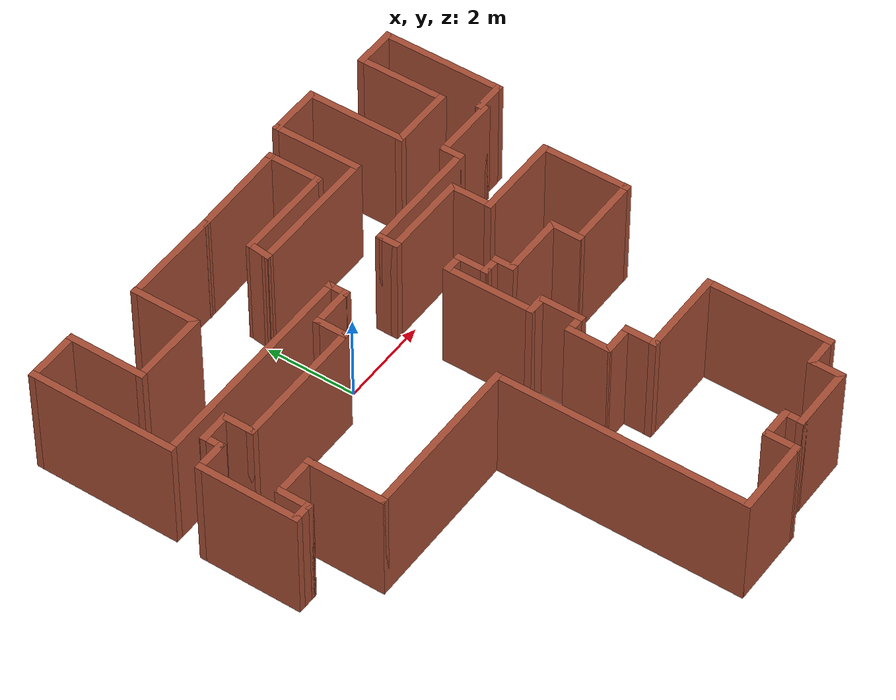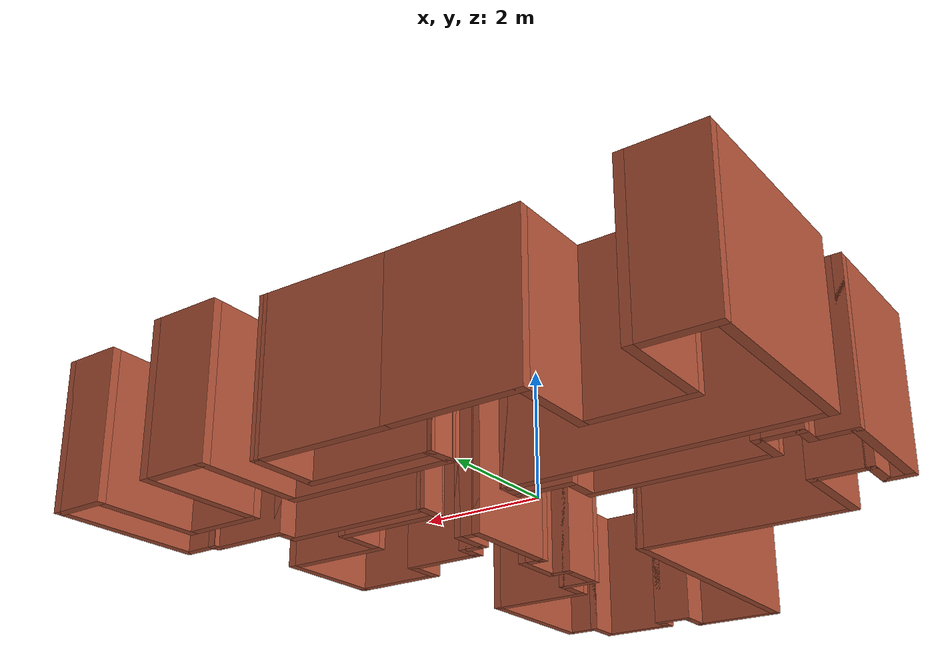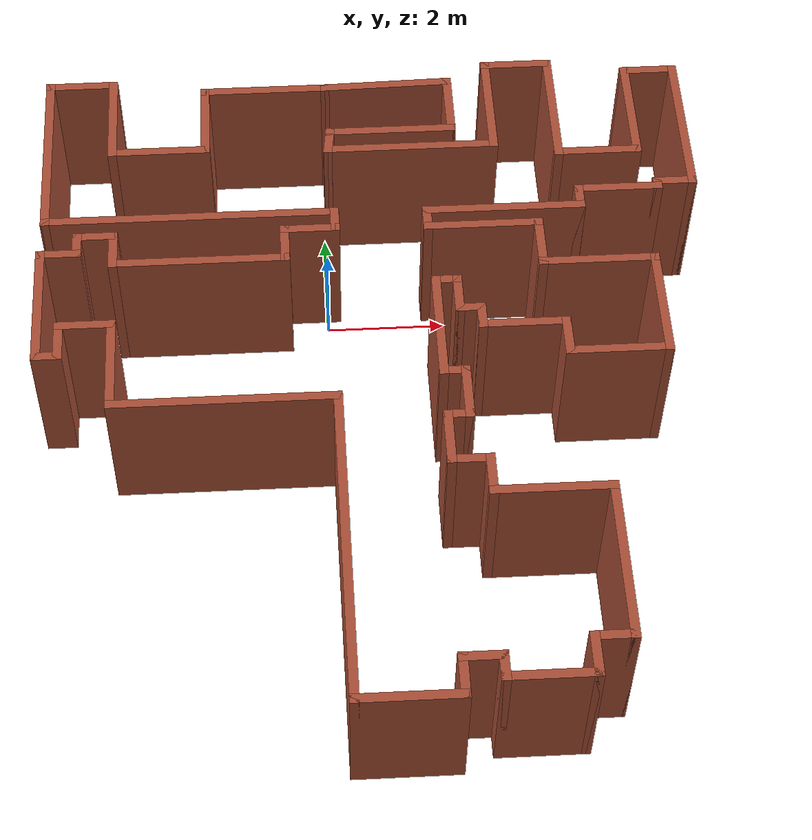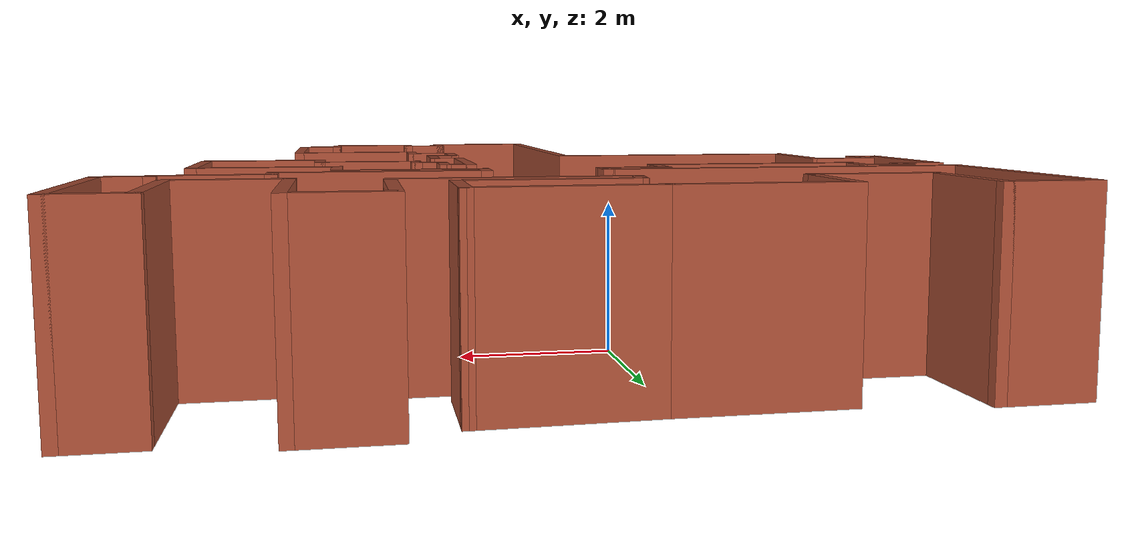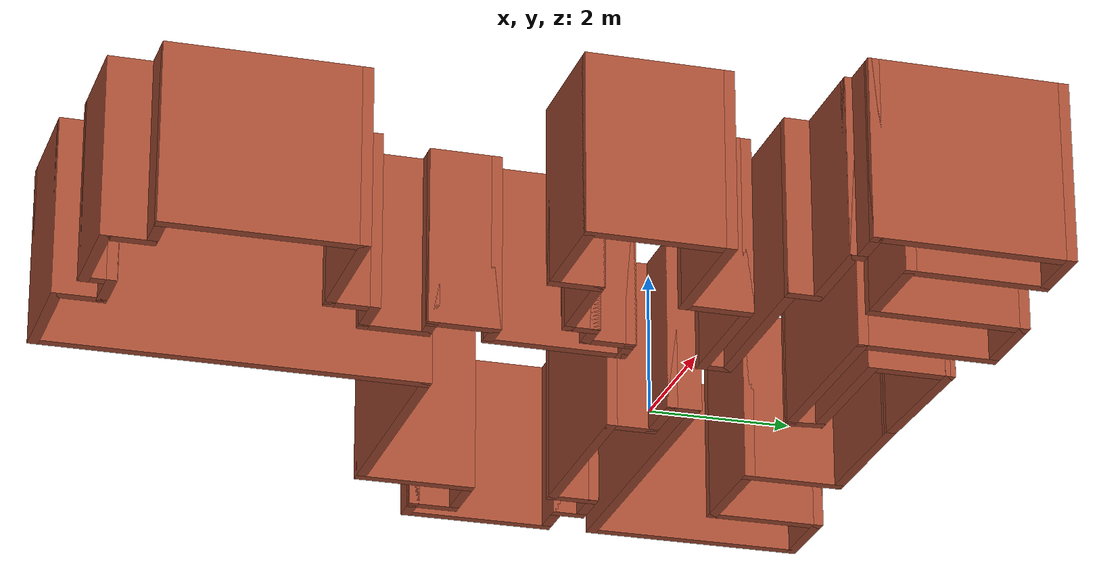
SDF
<?xml version='1.0'?>
<sdf version='1.6'>
  <model name='map_71'>
    <pose frame=''>0.742707 -2.34559 0 0 -0 0</pose>
    <link name='Wall_0'>
      <collision name='Wall_0_Collision'>
        <geometry>
          <box>
            <size>2.25 0.15 2.5</size>
          </box>
        </geometry>
        <pose frame=''>0 0 1.25 0 -0 0</pose>
      </collision>
      <visual name='Wall_0_Visual'>
        <pose frame=''>0 0 1.25 0 -0 0</pose>
        <geometry>
          <box>
            <size>2.25 0.15 2.5</size>
          </box>
        </geometry>
        <material>
          <script>
            <uri>file://media/materials/scripts/gazebo.material</uri>
            <name>Gazebo/Bricks</name>
          </script>
          <ambient>1 1 1 1</ambient>
        </material>
        <meta>
          <layer>0</layer>
        </meta>
      </visual>
      <pose frame=''>-1.7 5.8 0 0 -0 3.14159</pose>
    </link>
    <link name='Wall_1'>
      <collision name='Wall_1_Collision'>
        <geometry>
          <box>
            <size>1.5 0.15 2.5</size>
          </box>
        </geometry>
        <pose frame=''>0 0 1.25 0 -0 0</pose>
      </collision>
      <visual name='Wall_1_Visual'>
        <pose frame=''>0 0 1.25 0 -0 0</pose>
        <geometry>
          <box>
            <size>1.5 0.15 2.5</size>
          </box>
        </geometry>
        <material>
          <script>
            <uri>file://media/materials/scripts/gazebo.material</uri>
            <name>Gazebo/Bricks</name>
          </script>
          <ambient>1 1 1 1</ambient>
        </material>
        <meta>
          <layer>0</layer>
        </meta>
      </visual>
      <pose frame=''>-2.75 5.125 0 0 -0 -1.5708</pose>
    </link>
    <link name='Wall_10'>
      <collision name='Wall_10_Collision'>
        <geometry>
          <box>
            <size>3 0.15 2.5</size>
          </box>
        </geometry>
        <pose frame=''>0 0 1.25 0 -0 0</pose>
      </collision>
      <visual name='Wall_10_Visual'>
        <pose frame=''>0 0 1.25 0 -0 0</pose>
        <geometry>
          <box>
            <size>3 0.15 2.5</size>
          </box>
        </geometry>
        <material>
          <script>
            <uri>file://media/materials/scripts/gazebo.material</uri>
            <name>Gazebo/Bricks</name>
          </script>
          <ambient>1 1 1 1</ambient>
        </material>
        <meta>
          <layer>0</layer>
        </meta>
      </visual>
      <pose frame=''>-2.875 2 0 0 -0 3.14159</pose>
    </link>
    <link name='Wall_11'>
      <collision name='Wall_11_Collision'>
        <geometry>
          <box>
            <size>0.75 0.15 2.5</size>
          </box>
        </geometry>
        <pose frame=''>0 0 1.25 0 -0 0</pose>
      </collision>
      <visual name='Wall_11_Visual'>
        <pose frame=''>0 0 1.25 0 -0 0</pose>
        <geometry>
          <box>
            <size>0.75 0.15 2.5</size>
          </box>
        </geometry>
        <material>
          <script>
            <uri>file://media/materials/scripts/gazebo.material</uri>
            <name>Gazebo/Bricks</name>
          </script>
          <ambient>1 1 1 1</ambient>
        </material>
        <meta>
          <layer>0</layer>
        </meta>
      </visual>
      <pose frame=''>-4.3 2.3 0 0 -0 1.5708</pose>
    </link>
    <link name='Wall_12'>
      <collision name='Wall_12_Collision'>
        <geometry>
          <box>
            <size>0.75 0.15 2.5</size>
          </box>
        </geometry>
        <pose frame=''>0 0 1.25 0 -0 0</pose>
      </collision>
      <visual name='Wall_12_Visual'>
        <pose frame=''>0 0 1.25 0 -0 0</pose>
        <geometry>
          <box>
            <size>0.75 0.15 2.5</size>
          </box>
        </geometry>
        <material>
          <script>
            <uri>file://media/materials/scripts/gazebo.material</uri>
            <name>Gazebo/Bricks</name>
          </script>
          <ambient>1 1 1 1</ambient>
        </material>
        <meta>
          <layer>0</layer>
        </meta>
      </visual>
      <pose frame=''>-4.6 2.6 0 0 -0 3.14159</pose>
    </link>
    <link name='Wall_13'>
      <collision name='Wall_13_Collision'>
        <geometry>
          <box>
            <size>0.5 0.15 2.5</size>
          </box>
        </geometry>
        <pose frame=''>0 0 1.25 0 -0 0</pose>
      </collision>
      <visual name='Wall_13_Visual'>
        <pose frame=''>0 0 1.25 0 -0 0</pose>
        <geometry>
          <box>
            <size>0.5 0.15 2.5</size>
          </box>
        </geometry>
        <material>
          <script>
            <uri>file://media/materials/scripts/gazebo.material</uri>
            <name>Gazebo/Bricks</name>
          </script>
          <ambient>1 1 1 1</ambient>
        </material>
        <meta>
          <layer>0</layer>
        </meta>
      </visual>
      <pose frame=''>-4.9 2.425 0 0 -0 -1.5708</pose>
    </link>
    <link name='Wall_18'>
      <collision name='Wall_18_Collision'>
        <geometry>
          <box>
            <size>0.75 0.15 2.5</size>
          </box>
        </geometry>
        <pose frame=''>0 0 1.25 0 -0 0</pose>
      </collision>
      <visual name='Wall_18_Visual'>
        <pose frame=''>0 0 1.25 0 -0 0</pose>
        <geometry>
          <box>
            <size>0.75 0.15 2.5</size>
          </box>
        </geometry>
        <material>
          <script>
            <uri>file://media/materials/scripts/gazebo.material</uri>
            <name>Gazebo/Bricks</name>
          </script>
          <ambient>1 1 1 1</ambient>
        </material>
        <meta>
          <layer>0</layer>
        </meta>
      </visual>
      <pose frame=''>-5.2 2.25 0 0 -0 3.14159</pose>
    </link>
    <link name='Wall_19'>
      <collision name='Wall_19_Collision'>
        <geometry>
          <box>
            <size>2.25 0.15 2.5</size>
          </box>
        </geometry>
        <pose frame=''>0 0 1.25 0 -0 0</pose>
      </collision>
      <visual name='Wall_19_Visual'>
        <pose frame=''>0 0 1.25 0 -0 0</pose>
        <geometry>
          <box>
            <size>2.25 0.15 2.5</size>
          </box>
        </geometry>
        <material>
          <script>
            <uri>file://media/materials/scripts/gazebo.material</uri>
            <name>Gazebo/Bricks</name>
          </script>
          <ambient>1 1 1 1</ambient>
        </material>
        <meta>
          <layer>0</layer>
        </meta>
      </visual>
      <pose frame=''>-5.5 1.2 0 0 -0 -1.5708</pose>
    </link>
    <link name='Wall_2'>
      <collision name='Wall_2_Collision'>
        <geometry>
          <box>
            <size>1.75 0.15 2.5</size>
          </box>
        </geometry>
        <pose frame=''>0 0 1.25 0 -0 0</pose>
      </collision>
      <visual name='Wall_2_Visual'>
        <pose frame=''>0 0 1.25 0 -0 0</pose>
        <geometry>
          <box>
            <size>1.75 0.15 2.5</size>
          </box>
        </geometry>
        <material>
          <script>
            <uri>file://media/materials/scripts/gazebo.material</uri>
            <name>Gazebo/Bricks</name>
          </script>
          <ambient>1 1 1 1</ambient>
        </material>
        <meta>
          <layer>0</layer>
        </meta>
      </visual>
      <pose frame=''>-3.55 4.45 0 0 -0 3.14159</pose>
    </link>
    <link name='Wall_20'>
      <collision name='Wall_20_Collision'>
        <geometry>
          <box>
            <size>0.5 0.15 2.5</size>
          </box>
        </geometry>
        <pose frame=''>0 0 1.25 0 -0 0</pose>
      </collision>
      <visual name='Wall_20_Visual'>
        <pose frame=''>0 0 1.25 0 -0 0</pose>
        <geometry>
          <box>
            <size>0.5 0.15 2.5</size>
          </box>
        </geometry>
        <material>
          <script>
            <uri>file://media/materials/scripts/gazebo.material</uri>
            <name>Gazebo/Bricks</name>
          </script>
          <ambient>1 1 1 1</ambient>
        </material>
        <meta>
          <layer>0</layer>
        </meta>
      </visual>
      <pose frame=''>-5.325 0.15 0 0 -0 0</pose>
    </link>
    <link name='Wall_21'>
      <collision name='Wall_21_Collision'>
        <geometry>
          <box>
            <size>0.75 0.15 2.5</size>
          </box>
        </geometry>
        <pose frame=''>0 0 1.25 0 -0 0</pose>
      </collision>
      <visual name='Wall_21_Visual'>
        <pose frame=''>0 0 1.25 0 -0 0</pose>
        <geometry>
          <box>
            <size>0.75 0.15 2.5</size>
          </box>
        </geometry>
        <material>
          <script>
            <uri>file://media/materials/scripts/gazebo.material</uri>
            <name>Gazebo/Bricks</name>
          </script>
          <ambient>1 1 1 1</ambient>
        </material>
        <meta>
          <layer>0</layer>
        </meta>
      </visual>
      <pose frame=''>-5.15 0.45 0 0 -0 1.5708</pose>
    </link>
    <link name='Wall_22'>
      <collision name='Wall_22_Collision'>
        <geometry>
          <box>
            <size>1 0.15 2.5</size>
          </box>
        </geometry>
        <pose frame=''>0 0 1.25 0 -0 0</pose>
      </collision>
      <visual name='Wall_22_Visual'>
        <pose frame=''>0 0 1.25 0 -0 0</pose>
        <geometry>
          <box>
            <size>1 0.15 2.5</size>
          </box>
        </geometry>
        <material>
          <script>
            <uri>file://media/materials/scripts/gazebo.material</uri>
            <name>Gazebo/Bricks</name>
          </script>
          <ambient>1 1 1 1</ambient>
        </material>
        <meta>
          <layer>0</layer>
        </meta>
      </visual>
      <pose frame=''>-4.725 0.75 0 0 -0 0</pose>
    </link>
    <link name='Wall_23'>
      <collision name='Wall_23_Collision'>
        <geometry>
          <box>
            <size>1.75 0.15 2.5</size>
          </box>
        </geometry>
        <pose frame=''>0 0 1.25 0 -0 0</pose>
      </collision>
      <visual name='Wall_23_Visual'>
        <pose frame=''>0 0 1.25 0 -0 0</pose>
        <geometry>
          <box>
            <size>1.75 0.15 2.5</size>
          </box>
        </geometry>
        <material>
          <script>
            <uri>file://media/materials/scripts/gazebo.material</uri>
            <name>Gazebo/Bricks</name>
          </script>
          <ambient>1 1 1 1</ambient>
        </material>
        <meta>
          <layer>0</layer>
        </meta>
      </visual>
      <pose frame=''>-4.3 -0.05 0 0 -0 -1.5708</pose>
    </link>
    <link name='Wall_24'>
      <collision name='Wall_24_Collision'>
        <geometry>
          <box>
            <size>3.75 0.15 2.5</size>
          </box>
        </geometry>
        <pose frame=''>0 0 1.25 0 -0 0</pose>
      </collision>
      <visual name='Wall_24_Visual'>
        <pose frame=''>0 0 1.25 0 -0 0</pose>
        <geometry>
          <box>
            <size>3.75 0.15 2.5</size>
          </box>
        </geometry>
        <material>
          <script>
            <uri>file://media/materials/scripts/gazebo.material</uri>
            <name>Gazebo/Bricks</name>
          </script>
          <ambient>1 1 1 1</ambient>
        </material>
        <meta>
          <layer>0</layer>
        </meta>
      </visual>
      <pose frame=''>-2.5 -0.85 0 0 -0 0</pose>
    </link>
    <link name='Wall_25'>
      <collision name='Wall_25_Collision'>
        <geometry>
          <box>
            <size>5.5 0.15 2.5</size>
          </box>
        </geometry>
        <pose frame=''>0 0 1.25 0 -0 0</pose>
      </collision>
      <visual name='Wall_25_Visual'>
        <pose frame=''>0 0 1.25 0 -0 0</pose>
        <geometry>
          <box>
            <size>5.5 0.15 2.5</size>
          </box>
        </geometry>
        <material>
          <script>
            <uri>file://media/materials/scripts/gazebo.material</uri>
            <name>Gazebo/Bricks</name>
          </script>
          <ambient>1 1 1 1</ambient>
        </material>
        <meta>
          <layer>0</layer>
        </meta>
      </visual>
      <pose frame=''>-0.7 -3.525 0 0 -0 -1.5708</pose>
    </link>
    <link name='Wall_26'>
      <collision name='Wall_26_Collision'>
        <geometry>
          <box>
            <size>1.75 0.15 2.5</size>
          </box>
        </geometry>
        <pose frame=''>0 0 1.25 0 -0 0</pose>
      </collision>
      <visual name='Wall_26_Visual'>
        <pose frame=''>0 0 1.25 0 -0 0</pose>
        <geometry>
          <box>
            <size>1.75 0.15 2.5</size>
          </box>
        </geometry>
        <material>
          <script>
            <uri>file://media/materials/scripts/gazebo.material</uri>
            <name>Gazebo/Bricks</name>
          </script>
          <ambient>1 1 1 1</ambient>
        </material>
        <meta>
          <layer>0</layer>
        </meta>
      </visual>
      <pose frame=''>0.1 -6.2 0 0 -0 0</pose>
    </link>
    <link name='Wall_27'>
      <collision name='Wall_27_Collision'>
        <geometry>
          <box>
            <size>0.75 0.15 2.5</size>
          </box>
        </geometry>
        <pose frame=''>0 0 1.25 0 -0 0</pose>
      </collision>
      <visual name='Wall_27_Visual'>
        <pose frame=''>0 0 1.25 0 -0 0</pose>
        <geometry>
          <box>
            <size>0.75 0.15 2.5</size>
          </box>
        </geometry>
        <material>
          <script>
            <uri>file://media/materials/scripts/gazebo.material</uri>
            <name>Gazebo/Bricks</name>
          </script>
          <ambient>1 1 1 1</ambient>
        </material>
        <meta>
          <layer>0</layer>
        </meta>
      </visual>
      <pose frame=''>0.9 -5.9 0 0 -0 1.5708</pose>
    </link>
    <link name='Wall_28'>
      <collision name='Wall_28_Collision'>
        <geometry>
          <box>
            <size>0.75 0.15 2.5</size>
          </box>
        </geometry>
        <pose frame=''>0 0 1.25 0 -0 0</pose>
      </collision>
      <visual name='Wall_28_Visual'>
        <pose frame=''>0 0 1.25 0 -0 0</pose>
        <geometry>
          <box>
            <size>0.75 0.15 2.5</size>
          </box>
        </geometry>
        <material>
          <script>
            <uri>file://media/materials/scripts/gazebo.material</uri>
            <name>Gazebo/Bricks</name>
          </script>
          <ambient>1 1 1 1</ambient>
        </material>
        <meta>
          <layer>0</layer>
        </meta>
      </visual>
      <pose frame=''>1.2 -5.6 0 0 -0 0</pose>
    </link>
    <link name='Wall_29'>
      <collision name='Wall_29_Collision'>
        <geometry>
          <box>
            <size>0.5 0.15 2.5</size>
          </box>
        </geometry>
        <pose frame=''>0 0 1.25 0 -0 0</pose>
      </collision>
      <visual name='Wall_29_Visual'>
        <pose frame=''>0 0 1.25 0 -0 0</pose>
        <geometry>
          <box>
            <size>0.5 0.15 2.5</size>
          </box>
        </geometry>
        <material>
          <script>
            <uri>file://media/materials/scripts/gazebo.material</uri>
            <name>Gazebo/Bricks</name>
          </script>
          <ambient>1 1 1 1</ambient>
        </material>
        <meta>
          <layer>0</layer>
        </meta>
      </visual>
      <pose frame=''>1.5 -5.775 0 0 -0 -1.5708</pose>
    </link>
    <link name='Wall_3'>
      <collision name='Wall_3_Collision'>
        <geometry>
          <box>
            <size>1.75 0.15 2.5</size>
          </box>
        </geometry>
        <pose frame=''>0 0 1.25 0 -0 0</pose>
      </collision>
      <visual name='Wall_3_Visual'>
        <pose frame=''>0 0 1.25 0 -0 0</pose>
        <geometry>
          <box>
            <size>1.75 0.15 2.5</size>
          </box>
        </geometry>
        <material>
          <script>
            <uri>file://media/materials/scripts/gazebo.material</uri>
            <name>Gazebo/Bricks</name>
          </script>
          <ambient>1 1 1 1</ambient>
        </material>
        <meta>
          <layer>0</layer>
        </meta>
      </visual>
      <pose frame=''>-4.35 5.25 0 0 -0 1.5708</pose>
    </link>
    <link name='Wall_30'>
      <collision name='Wall_30_Collision'>
        <geometry>
          <box>
            <size>1.5 0.15 2.5</size>
          </box>
        </geometry>
        <pose frame=''>0 0 1.25 0 -0 0</pose>
      </collision>
      <visual name='Wall_30_Visual'>
        <pose frame=''>0 0 1.25 0 -0 0</pose>
        <geometry>
          <box>
            <size>1.5 0.15 2.5</size>
          </box>
        </geometry>
        <material>
          <script>
            <uri>file://media/materials/scripts/gazebo.material</uri>
            <name>Gazebo/Bricks</name>
          </script>
          <ambient>1 1 1 1</ambient>
        </material>
        <meta>
          <layer>0</layer>
        </meta>
      </visual>
      <pose frame=''>2.175 -5.95 0 0 -0 0</pose>
    </link>
    <link name='Wall_31'>
      <collision name='Wall_31_Collision'>
        <geometry>
          <box>
            <size>0.75 0.15 2.5</size>
          </box>
        </geometry>
        <pose frame=''>0 0 1.25 0 -0 0</pose>
      </collision>
      <visual name='Wall_31_Visual'>
        <pose frame=''>0 0 1.25 0 -0 0</pose>
        <geometry>
          <box>
            <size>0.75 0.15 2.5</size>
          </box>
        </geometry>
        <material>
          <script>
            <uri>file://media/materials/scripts/gazebo.material</uri>
            <name>Gazebo/Bricks</name>
          </script>
          <ambient>1 1 1 1</ambient>
        </material>
        <meta>
          <layer>0</layer>
        </meta>
      </visual>
      <pose frame=''>2.85 -5.65 0 0 -0 1.5708</pose>
    </link>
    <link name='Wall_32'>
      <collision name='Wall_32_Collision'>
        <geometry>
          <box>
            <size>0.75 0.15 2.5</size>
          </box>
        </geometry>
        <pose frame=''>0 0 1.25 0 -0 0</pose>
      </collision>
      <visual name='Wall_32_Visual'>
        <pose frame=''>0 0 1.25 0 -0 0</pose>
        <geometry>
          <box>
            <size>0.75 0.15 2.5</size>
          </box>
        </geometry>
        <material>
          <script>
            <uri>file://media/materials/scripts/gazebo.material</uri>
            <name>Gazebo/Bricks</name>
          </script>
          <ambient>1 1 1 1</ambient>
        </material>
        <meta>
          <layer>0</layer>
        </meta>
      </visual>
      <pose frame=''>3.15 -5.35 0 0 -0 0</pose>
    </link>
    <link name='Wall_33'>
      <collision name='Wall_33_Collision'>
        <geometry>
          <box>
            <size>2.75 0.15 2.5</size>
          </box>
        </geometry>
        <pose frame=''>0 0 1.25 0 -0 0</pose>
      </collision>
      <visual name='Wall_33_Visual'>
        <pose frame=''>0 0 1.25 0 -0 0</pose>
        <geometry>
          <box>
            <size>2.75 0.15 2.5</size>
          </box>
        </geometry>
        <material>
          <script>
            <uri>file://media/materials/scripts/gazebo.material</uri>
            <name>Gazebo/Bricks</name>
          </script>
          <ambient>1 1 1 1</ambient>
        </material>
        <meta>
          <layer>0</layer>
        </meta>
      </visual>
      <pose frame=''>3.45 -4.05 0 0 -0 1.5708</pose>
    </link>
    <link name='Wall_34'>
      <collision name='Wall_34_Collision'>
        <geometry>
          <box>
            <size>2 0.15 2.5</size>
          </box>
        </geometry>
        <pose frame=''>0 0 1.25 0 -0 0</pose>
      </collision>
      <visual name='Wall_34_Visual'>
        <pose frame=''>0 0 1.25 0 -0 0</pose>
        <geometry>
          <box>
            <size>2 0.15 2.5</size>
          </box>
        </geometry>
        <material>
          <script>
            <uri>file://media/materials/scripts/gazebo.material</uri>
            <name>Gazebo/Bricks</name>
          </script>
          <ambient>1 1 1 1</ambient>
        </material>
        <meta>
          <layer>0</layer>
        </meta>
      </visual>
      <pose frame=''>2.525 -2.75 0 0 -0 3.14159</pose>
    </link>
    <link name='Wall_35'>
      <collision name='Wall_35_Collision'>
        <geometry>
          <box>
            <size>0.75 0.15 2.5</size>
          </box>
        </geometry>
        <pose frame=''>0 0 1.25 0 -0 0</pose>
      </collision>
      <visual name='Wall_35_Visual'>
        <pose frame=''>0 0 1.25 0 -0 0</pose>
        <geometry>
          <box>
            <size>0.75 0.15 2.5</size>
          </box>
        </geometry>
        <material>
          <script>
            <uri>file://media/materials/scripts/gazebo.material</uri>
            <name>Gazebo/Bricks</name>
          </script>
          <ambient>1 1 1 1</ambient>
        </material>
        <meta>
          <layer>0</layer>
        </meta>
      </visual>
      <pose frame=''>1.6 -2.45 0 0 -0 1.5708</pose>
    </link>
    <link name='Wall_36'>
      <collision name='Wall_36_Collision'>
        <geometry>
          <box>
            <size>0.75 0.15 2.5</size>
          </box>
        </geometry>
        <pose frame=''>0 0 1.25 0 -0 0</pose>
      </collision>
      <visual name='Wall_36_Visual'>
        <pose frame=''>0 0 1.25 0 -0 0</pose>
        <geometry>
          <box>
            <size>0.75 0.15 2.5</size>
          </box>
        </geometry>
        <material>
          <script>
            <uri>file://media/materials/scripts/gazebo.material</uri>
            <name>Gazebo/Bricks</name>
          </script>
          <ambient>1 1 1 1</ambient>
        </material>
        <meta>
          <layer>0</layer>
        </meta>
      </visual>
      <pose frame=''>1.3 -2.15 0 0 -0 3.14159</pose>
    </link>
    <link name='Wall_37'>
      <collision name='Wall_37_Collision'>
        <geometry>
          <box>
            <size>1 0.15 2.5</size>
          </box>
        </geometry>
        <pose frame=''>0 0 1.25 0 -0 0</pose>
      </collision>
      <visual name='Wall_37_Visual'>
        <pose frame=''>0 0 1.25 0 -0 0</pose>
        <geometry>
          <box>
            <size>1 0.15 2.5</size>
          </box>
        </geometry>
        <material>
          <script>
            <uri>file://media/materials/scripts/gazebo.material</uri>
            <name>Gazebo/Bricks</name>
          </script>
          <ambient>1 1 1 1</ambient>
        </material>
        <meta>
          <layer>0</layer>
        </meta>
      </visual>
      <pose frame=''>1 -1.725 0 0 -0 1.5708</pose>
    </link>
    <link name='Wall_38'>
      <collision name='Wall_38_Collision'>
        <geometry>
          <box>
            <size>0.5 0.15 2.5</size>
          </box>
        </geometry>
        <pose frame=''>0 0 1.25 0 -0 0</pose>
      </collision>
      <visual name='Wall_38_Visual'>
        <pose frame=''>0 0 1.25 0 -0 0</pose>
        <geometry>
          <box>
            <size>0.5 0.15 2.5</size>
          </box>
        </geometry>
        <material>
          <script>
            <uri>file://media/materials/scripts/gazebo.material</uri>
            <name>Gazebo/Bricks</name>
          </script>
          <ambient>1 1 1 1</ambient>
        </material>
        <meta>
          <layer>0</layer>
        </meta>
      </visual>
      <pose frame=''>1.175 -1.3 0 0 -0 0</pose>
    </link>
    <link name='Wall_39'>
      <collision name='Wall_39_Collision'>
        <geometry>
          <box>
            <size>1 0.15 2.5</size>
          </box>
        </geometry>
        <pose frame=''>0 0 1.25 0 -0 0</pose>
      </collision>
      <visual name='Wall_39_Visual'>
        <pose frame=''>0 0 1.25 0 -0 0</pose>
        <geometry>
          <box>
            <size>1 0.15 2.5</size>
          </box>
        </geometry>
        <material>
          <script>
            <uri>file://media/materials/scripts/gazebo.material</uri>
            <name>Gazebo/Bricks</name>
          </script>
          <ambient>1 1 1 1</ambient>
        </material>
        <meta>
          <layer>0</layer>
        </meta>
      </visual>
      <pose frame=''>1.35 -0.875 0 0 -0 1.5708</pose>
    </link>
    <link name='Wall_4'>
      <collision name='Wall_4_Collision'>
        <geometry>
          <box>
            <size>1.25 0.15 2.5</size>
          </box>
        </geometry>
        <pose frame=''>0 0 1.25 0 -0 0</pose>
      </collision>
      <visual name='Wall_4_Visual'>
        <pose frame=''>0 0 1.25 0 -0 0</pose>
        <geometry>
          <box>
            <size>1.25 0.15 2.5</size>
          </box>
        </geometry>
        <material>
          <script>
            <uri>file://media/materials/scripts/gazebo.material</uri>
            <name>Gazebo/Bricks</name>
          </script>
          <ambient>1 1 1 1</ambient>
        </material>
        <meta>
          <layer>0</layer>
        </meta>
      </visual>
      <pose frame=''>-4.9 6.05 0 0 -0 3.14159</pose>
    </link>
    <link name='Wall_40'>
      <collision name='Wall_40_Collision'>
        <geometry>
          <box>
            <size>0.5 0.15 2.5</size>
          </box>
        </geometry>
        <pose frame=''>0 0 1.25 0 -0 0</pose>
      </collision>
      <visual name='Wall_40_Visual'>
        <pose frame=''>0 0 1.25 0 -0 0</pose>
        <geometry>
          <box>
            <size>0.5 0.15 2.5</size>
          </box>
        </geometry>
        <material>
          <script>
            <uri>file://media/materials/scripts/gazebo.material</uri>
            <name>Gazebo/Bricks</name>
          </script>
          <ambient>1 1 1 1</ambient>
        </material>
        <meta>
          <layer>0</layer>
        </meta>
      </visual>
      <pose frame=''>1.175 -0.45 0 0 -0 3.14159</pose>
    </link>
    <link name='Wall_41'>
      <collision name='Wall_41_Collision'>
        <geometry>
          <box>
            <size>2 0.15 2.5</size>
          </box>
        </geometry>
        <pose frame=''>0 0 1.25 0 -0 0</pose>
      </collision>
      <visual name='Wall_41_Visual'>
        <pose frame=''>0 0 1.25 0 -0 0</pose>
        <geometry>
          <box>
            <size>2 0.15 2.5</size>
          </box>
        </geometry>
        <material>
          <script>
            <uri>file://media/materials/scripts/gazebo.material</uri>
            <name>Gazebo/Bricks</name>
          </script>
          <ambient>1 1 1 1</ambient>
        </material>
        <meta>
          <layer>0</layer>
        </meta>
      </visual>
      <pose frame=''>1 0.475 0 0 -0 1.5708</pose>
    </link>
    <link name='Wall_42'>
      <collision name='Wall_42_Collision'>
        <geometry>
          <box>
            <size>0.5 0.15 2.5</size>
          </box>
        </geometry>
        <pose frame=''>0 0 1.25 0 -0 0</pose>
      </collision>
      <visual name='Wall_42_Visual'>
        <pose frame=''>0 0 1.25 0 -0 0</pose>
        <geometry>
          <box>
            <size>0.5 0.15 2.5</size>
          </box>
        </geometry>
        <material>
          <script>
            <uri>file://media/materials/scripts/gazebo.material</uri>
            <name>Gazebo/Bricks</name>
          </script>
          <ambient>1 1 1 1</ambient>
        </material>
        <meta>
          <layer>0</layer>
        </meta>
      </visual>
      <pose frame=''>1.175 1.4 0 0 -0 0</pose>
    </link>
    <link name='Wall_43'>
      <collision name='Wall_43_Collision'>
        <geometry>
          <box>
            <size>0.75 0.15 2.5</size>
          </box>
        </geometry>
        <pose frame=''>0 0 1.25 0 -0 0</pose>
      </collision>
      <visual name='Wall_43_Visual'>
        <pose frame=''>0 0 1.25 0 -0 0</pose>
        <geometry>
          <box>
            <size>0.75 0.15 2.5</size>
          </box>
        </geometry>
        <material>
          <script>
            <uri>file://media/materials/scripts/gazebo.material</uri>
            <name>Gazebo/Bricks</name>
          </script>
          <ambient>1 1 1 1</ambient>
        </material>
        <meta>
          <layer>0</layer>
        </meta>
      </visual>
      <pose frame=''>1.35 1.1 0 0 -0 -1.5708</pose>
    </link>
    <link name='Wall_44'>
      <collision name='Wall_44_Collision'>
        <geometry>
          <box>
            <size>0.5 0.15 2.5</size>
          </box>
        </geometry>
        <pose frame=''>0 0 1.25 0 -0 0</pose>
      </collision>
      <visual name='Wall_44_Visual'>
        <pose frame=''>0 0 1.25 0 -0 0</pose>
        <geometry>
          <box>
            <size>0.5 0.15 2.5</size>
          </box>
        </geometry>
        <material>
          <script>
            <uri>file://media/materials/scripts/gazebo.material</uri>
            <name>Gazebo/Bricks</name>
          </script>
          <ambient>1 1 1 1</ambient>
        </material>
        <meta>
          <layer>0</layer>
        </meta>
      </visual>
      <pose frame=''>1.525 0.8 0 0 -0 0</pose>
    </link>
    <link name='Wall_45'>
      <collision name='Wall_45_Collision'>
        <geometry>
          <box>
            <size>0.5 0.15 2.5</size>
          </box>
        </geometry>
        <pose frame=''>0 0 1.25 0 -0 0</pose>
      </collision>
      <visual name='Wall_45_Visual'>
        <pose frame=''>0 0 1.25 0 -0 0</pose>
        <geometry>
          <box>
            <size>0.5 0.15 2.5</size>
          </box>
        </geometry>
        <material>
          <script>
            <uri>file://media/materials/scripts/gazebo.material</uri>
            <name>Gazebo/Bricks</name>
          </script>
          <ambient>1 1 1 1</ambient>
        </material>
        <meta>
          <layer>0</layer>
        </meta>
      </visual>
      <pose frame=''>1.7 0.625 0 0 -0 -1.5708</pose>
    </link>
    <link name='Wall_46'>
      <collision name='Wall_46_Collision'>
        <geometry>
          <box>
            <size>1.5 0.15 2.5</size>
          </box>
        </geometry>
        <pose frame=''>0 0 1.25 0 -0 0</pose>
      </collision>
      <visual name='Wall_46_Visual'>
        <pose frame=''>0 0 1.25 0 -0 0</pose>
        <geometry>
          <box>
            <size>1.5 0.15 2.5</size>
          </box>
        </geometry>
        <material>
          <script>
            <uri>file://media/materials/scripts/gazebo.material</uri>
            <name>Gazebo/Bricks</name>
          </script>
          <ambient>1 1 1 1</ambient>
        </material>
        <meta>
          <layer>0</layer>
        </meta>
      </visual>
      <pose frame=''>2.375 0.45 0 0 -0 0</pose>
    </link>
    <link name='Wall_47'>
      <collision name='Wall_47_Collision'>
        <geometry>
          <box>
            <size>0.75 0.15 2.5</size>
          </box>
        </geometry>
        <pose frame=''>0 0 1.25 0 -0 0</pose>
      </collision>
      <visual name='Wall_47_Visual'>
        <pose frame=''>0 0 1.25 0 -0 0</pose>
        <geometry>
          <box>
            <size>0.75 0.15 2.5</size>
          </box>
        </geometry>
        <material>
          <script>
            <uri>file://media/materials/scripts/gazebo.material</uri>
            <name>Gazebo/Bricks</name>
          </script>
          <ambient>1 1 1 1</ambient>
        </material>
        <meta>
          <layer>0</layer>
        </meta>
      </visual>
      <pose frame=''>3.05 0.15 0 0 -0 -1.5708</pose>
    </link>
    <link name='Wall_48'>
      <collision name='Wall_48_Collision'>
        <geometry>
          <box>
            <size>1.75 0.15 2.5</size>
          </box>
        </geometry>
        <pose frame=''>0 0 1.25 0 -0 0</pose>
      </collision>
      <visual name='Wall_48_Visual'>
        <pose frame=''>0 0 1.25 0 -0 0</pose>
        <geometry>
          <box>
            <size>1.75 0.15 2.5</size>
          </box>
        </geometry>
        <material>
          <script>
            <uri>file://media/materials/scripts/gazebo.material</uri>
            <name>Gazebo/Bricks</name>
          </script>
          <ambient>1 1 1 1</ambient>
        </material>
        <meta>
          <layer>0</layer>
        </meta>
      </visual>
      <pose frame=''>3.85 -0.15 0 0 -0 0</pose>
    </link>
    <link name='Wall_49'>
      <collision name='Wall_49_Collision'>
        <geometry>
          <box>
            <size>2 0.15 2.5</size>
          </box>
        </geometry>
        <pose frame=''>0 0 1.25 0 -0 0</pose>
      </collision>
      <visual name='Wall_49_Visual'>
        <pose frame=''>0 0 1.25 0 -0 0</pose>
        <geometry>
          <box>
            <size>2 0.15 2.5</size>
          </box>
        </geometry>
        <material>
          <script>
            <uri>file://media/materials/scripts/gazebo.material</uri>
            <name>Gazebo/Bricks</name>
          </script>
          <ambient>1 1 1 1</ambient>
        </material>
        <meta>
          <layer>0</layer>
        </meta>
      </visual>
      <pose frame=''>4.65 0.775 0 0 -0 1.5708</pose>
    </link>
    <link name='Wall_5'>
      <collision name='Wall_5_Collision'>
        <geometry>
          <box>
            <size>3.25 0.15 2.5</size>
          </box>
        </geometry>
        <pose frame=''>0 0 1.25 0 -0 0</pose>
      </collision>
      <visual name='Wall_5_Visual'>
        <pose frame=''>0 0 1.25 0 -0 0</pose>
        <geometry>
          <box>
            <size>3.25 0.15 2.5</size>
          </box>
        </geometry>
        <material>
          <script>
            <uri>file://media/materials/scripts/gazebo.material</uri>
            <name>Gazebo/Bricks</name>
          </script>
          <ambient>1 1 1 1</ambient>
        </material>
        <meta>
          <layer>0</layer>
        </meta>
      </visual>
      <pose frame=''>-5.45 4.5 0 0 -0 -1.5708</pose>
    </link>
    <link name='Wall_50'>
      <collision name='Wall_50_Collision'>
        <geometry>
          <box>
            <size>2 0.15 2.5</size>
          </box>
        </geometry>
        <pose frame=''>0 0 1.25 0 -0 0</pose>
      </collision>
      <visual name='Wall_50_Visual'>
        <pose frame=''>0 0 1.25 0 -0 0</pose>
        <geometry>
          <box>
            <size>2 0.15 2.5</size>
          </box>
        </geometry>
        <material>
          <script>
            <uri>file://media/materials/scripts/gazebo.material</uri>
            <name>Gazebo/Bricks</name>
          </script>
          <ambient>1 1 1 1</ambient>
        </material>
        <meta>
          <layer>0</layer>
        </meta>
      </visual>
      <pose frame=''>3.725 1.7 0 0 -0 3.14159</pose>
    </link>
    <link name='Wall_51'>
      <collision name='Wall_51_Collision'>
        <geometry>
          <box>
            <size>1 0.15 2.5</size>
          </box>
        </geometry>
        <pose frame=''>0 0 1.25 0 -0 0</pose>
      </collision>
      <visual name='Wall_51_Visual'>
        <pose frame=''>0 0 1.25 0 -0 0</pose>
        <geometry>
          <box>
            <size>1 0.15 2.5</size>
          </box>
        </geometry>
        <material>
          <script>
            <uri>file://media/materials/scripts/gazebo.material</uri>
            <name>Gazebo/Bricks</name>
          </script>
          <ambient>1 1 1 1</ambient>
        </material>
        <meta>
          <layer>0</layer>
        </meta>
      </visual>
      <pose frame=''>2.8 2.125 0 0 -0 1.5708</pose>
    </link>
    <link name='Wall_52'>
      <collision name='Wall_52_Collision'>
        <geometry>
          <box>
            <size>2 0.15 2.5</size>
          </box>
        </geometry>
        <pose frame=''>0 0 1.25 0 -0 0</pose>
      </collision>
      <visual name='Wall_52_Visual'>
        <pose frame=''>0 0 1.25 0 -0 0</pose>
        <geometry>
          <box>
            <size>2 0.15 2.5</size>
          </box>
        </geometry>
        <material>
          <script>
            <uri>file://media/materials/scripts/gazebo.material</uri>
            <name>Gazebo/Bricks</name>
          </script>
          <ambient>1 1 1 1</ambient>
        </material>
        <meta>
          <layer>0</layer>
        </meta>
      </visual>
      <pose frame=''>1.875 2.55 0 0 -0 3.14159</pose>
    </link>
    <link name='Wall_53'>
      <collision name='Wall_53_Collision'>
        <geometry>
          <box>
            <size>0.5 0.15 2.5</size>
          </box>
        </geometry>
        <pose frame=''>0 0 1.25 0 -0 0</pose>
      </collision>
      <visual name='Wall_53_Visual'>
        <pose frame=''>0 0 1.25 0 -0 0</pose>
        <geometry>
          <box>
            <size>0.5 0.15 2.5</size>
          </box>
        </geometry>
        <material>
          <script>
            <uri>file://media/materials/scripts/gazebo.material</uri>
            <name>Gazebo/Bricks</name>
          </script>
          <ambient>1 1 1 1</ambient>
        </material>
        <meta>
          <layer>0</layer>
        </meta>
      </visual>
      <pose frame=''>0.95 2.725 0 0 -0 1.5708</pose>
    </link>
    <link name='Wall_54'>
      <collision name='Wall_54_Collision'>
        <geometry>
          <box>
            <size>2.75 0.15 2.5</size>
          </box>
        </geometry>
        <pose frame=''>0 0 1.25 0 -0 0</pose>
      </collision>
      <visual name='Wall_54_Visual'>
        <pose frame=''>0 0 1.25 0 -0 0</pose>
        <geometry>
          <box>
            <size>2.75 0.15 2.5</size>
          </box>
        </geometry>
        <material>
          <script>
            <uri>file://media/materials/scripts/gazebo.material</uri>
            <name>Gazebo/Bricks</name>
          </script>
          <ambient>1 1 1 1</ambient>
        </material>
        <meta>
          <layer>0</layer>
        </meta>
      </visual>
      <pose frame=''>2.25 2.9 0 0 -0 0</pose>
    </link>
    <link name='Wall_55'>
      <collision name='Wall_55_Collision'>
        <geometry>
          <box>
            <size>0.5 0.15 2.5</size>
          </box>
        </geometry>
        <pose frame=''>0 0 1.25 0 -0 0</pose>
      </collision>
      <visual name='Wall_55_Visual'>
        <pose frame=''>0 0 1.25 0 -0 0</pose>
        <geometry>
          <box>
            <size>0.5 0.15 2.5</size>
          </box>
        </geometry>
        <material>
          <script>
            <uri>file://media/materials/scripts/gazebo.material</uri>
            <name>Gazebo/Bricks</name>
          </script>
          <ambient>1 1 1 1</ambient>
        </material>
        <meta>
          <layer>0</layer>
        </meta>
      </visual>
      <pose frame=''>3.55 3.075 0 0 -0 1.5708</pose>
    </link>
    <link name='Wall_56'>
      <collision name='Wall_56_Collision'>
        <geometry>
          <box>
            <size>1.5 0.15 2.5</size>
          </box>
        </geometry>
        <pose frame=''>0 0 1.25 0 -0 0</pose>
      </collision>
      <visual name='Wall_56_Visual'>
        <pose frame=''>0 0 1.25 0 -0 0</pose>
        <geometry>
          <box>
            <size>1.5 0.15 2.5</size>
          </box>
        </geometry>
        <material>
          <script>
            <uri>file://media/materials/scripts/gazebo.material</uri>
            <name>Gazebo/Bricks</name>
          </script>
          <ambient>1 1 1 1</ambient>
        </material>
        <meta>
          <layer>0</layer>
        </meta>
      </visual>
      <pose frame=''>4.225 3.25 0 0 -0 0</pose>
    </link>
    <link name='Wall_57'>
      <collision name='Wall_57_Collision'>
        <geometry>
          <box>
            <size>0.25 0.15 2.5</size>
          </box>
        </geometry>
        <pose frame=''>0 0 1.25 0 -0 0</pose>
      </collision>
      <visual name='Wall_57_Visual'>
        <pose frame=''>0 0 1.25 0 -0 0</pose>
        <geometry>
          <box>
            <size>0.25 0.15 2.5</size>
          </box>
        </geometry>
        <material>
          <script>
            <uri>file://media/materials/scripts/gazebo.material</uri>
            <name>Gazebo/Bricks</name>
          </script>
          <ambient>1 1 1 1</ambient>
        </material>
        <meta>
          <layer>0</layer>
        </meta>
      </visual>
      <pose frame=''>4.9 3.3 0 0 -0 1.5708</pose>
    </link>
    <link name='Wall_58'>
      <collision name='Wall_58_Collision'>
        <geometry>
          <box>
            <size>0.75 0.15 2.5</size>
          </box>
        </geometry>
        <pose frame=''>0 0 1.25 0 -0 0</pose>
      </collision>
      <visual name='Wall_58_Visual'>
        <pose frame=''>0 0 1.25 0 -0 0</pose>
        <geometry>
          <box>
            <size>0.75 0.15 2.5</size>
          </box>
        </geometry>
        <material>
          <script>
            <uri>file://media/materials/scripts/gazebo.material</uri>
            <name>Gazebo/Bricks</name>
          </script>
          <ambient>1 1 1 1</ambient>
        </material>
        <meta>
          <layer>0</layer>
        </meta>
      </visual>
      <pose frame=''>5.2 3.35 0 0 -0 0</pose>
    </link>
    <link name='Wall_59'>
      <collision name='Wall_59_Collision'>
        <geometry>
          <box>
            <size>2.75 0.15 2.5</size>
          </box>
        </geometry>
        <pose frame=''>0 0 1.25 0 -0 0</pose>
      </collision>
      <visual name='Wall_59_Visual'>
        <pose frame=''>0 0 1.25 0 -0 0</pose>
        <geometry>
          <box>
            <size>2.75 0.15 2.5</size>
          </box>
        </geometry>
        <material>
          <script>
            <uri>file://media/materials/scripts/gazebo.material</uri>
            <name>Gazebo/Bricks</name>
          </script>
          <ambient>1 1 1 1</ambient>
        </material>
        <meta>
          <layer>0</layer>
        </meta>
      </visual>
      <pose frame=''>5.5 4.65 0 0 -0 1.5708</pose>
    </link>
    <link name='Wall_6'>
      <collision name='Wall_6_Collision'>
        <geometry>
          <box>
            <size>5 0.15 2.5</size>
          </box>
        </geometry>
        <pose frame=''>0 0 1.25 0 -0 0</pose>
      </collision>
      <visual name='Wall_6_Visual'>
        <pose frame=''>0 0 1.25 0 -0 0</pose>
        <geometry>
          <box>
            <size>5 0.15 2.5</size>
          </box>
        </geometry>
        <material>
          <script>
            <uri>file://media/materials/scripts/gazebo.material</uri>
            <name>Gazebo/Bricks</name>
          </script>
          <ambient>1 1 1 1</ambient>
        </material>
        <meta>
          <layer>0</layer>
        </meta>
      </visual>
      <pose frame=''>-3.025 2.95 0 0 -0 0</pose>
    </link>
    <link name='Wall_60'>
      <collision name='Wall_60_Collision'>
        <geometry>
          <box>
            <size>1 0.15 2.5</size>
          </box>
        </geometry>
        <pose frame=''>0 0 1.25 0 -0 0</pose>
      </collision>
      <visual name='Wall_60_Visual'>
        <pose frame=''>0 0 1.25 0 -0 0</pose>
        <geometry>
          <box>
            <size>1 0.15 2.5</size>
          </box>
        </geometry>
        <material>
          <script>
            <uri>file://media/materials/scripts/gazebo.material</uri>
            <name>Gazebo/Bricks</name>
          </script>
          <ambient>1 1 1 1</ambient>
        </material>
        <meta>
          <layer>0</layer>
        </meta>
      </visual>
      <pose frame=''>5.075 5.95 0 0 -0 3.14159</pose>
    </link>
    <link name='Wall_62'>
      <collision name='Wall_62_Collision'>
        <geometry>
          <box>
            <size>2 0.15 2.5</size>
          </box>
        </geometry>
        <pose frame=''>0 0 1.25 0 -0 0</pose>
      </collision>
      <visual name='Wall_62_Visual'>
        <pose frame=''>0 0 1.25 0 -0 0</pose>
        <geometry>
          <box>
            <size>2 0.15 2.5</size>
          </box>
        </geometry>
        <material>
          <script>
            <uri>file://media/materials/scripts/gazebo.material</uri>
            <name>Gazebo/Bricks</name>
          </script>
          <ambient>1 1 1 1</ambient>
        </material>
        <meta>
          <layer>0</layer>
        </meta>
      </visual>
      <pose frame=''>4.65 5.025 0 0 -0 -1.5708</pose>
    </link>
    <link name='Wall_63'>
      <collision name='Wall_63_Collision'>
        <geometry>
          <box>
            <size>1.5 0.15 2.5</size>
          </box>
        </geometry>
        <pose frame=''>0 0 1.25 0 -0 0</pose>
      </collision>
      <visual name='Wall_63_Visual'>
        <pose frame=''>0 0 1.25 0 -0 0</pose>
        <geometry>
          <box>
            <size>1.5 0.15 2.5</size>
          </box>
        </geometry>
        <material>
          <script>
            <uri>file://media/materials/scripts/gazebo.material</uri>
            <name>Gazebo/Bricks</name>
          </script>
          <ambient>1 1 1 1</ambient>
        </material>
        <meta>
          <layer>0</layer>
        </meta>
      </visual>
      <pose frame=''>3.975 4.1 0 0 -0 3.14159</pose>
    </link>
    <link name='Wall_64'>
      <collision name='Wall_64_Collision'>
        <geometry>
          <box>
            <size>2.25 0.15 2.5</size>
          </box>
        </geometry>
        <pose frame=''>0 0 1.25 0 -0 0</pose>
      </collision>
      <visual name='Wall_64_Visual'>
        <pose frame=''>0 0 1.25 0 -0 0</pose>
        <geometry>
          <box>
            <size>2.25 0.15 2.5</size>
          </box>
        </geometry>
        <material>
          <script>
            <uri>file://media/materials/scripts/gazebo.material</uri>
            <name>Gazebo/Bricks</name>
          </script>
          <ambient>1 1 1 1</ambient>
        </material>
        <meta>
          <layer>0</layer>
        </meta>
      </visual>
      <pose frame=''>3.3 5.15 0 0 -0 1.5708</pose>
    </link>
    <link name='Wall_65'>
      <collision name='Wall_65_Collision'>
        <geometry>
          <box>
            <size>1.25 0.15 2.5</size>
          </box>
        </geometry>
        <pose frame=''>0 0 1.25 0 -0 0</pose>
      </collision>
      <visual name='Wall_65_Visual'>
        <pose frame=''>0 0 1.25 0 -0 0</pose>
        <geometry>
          <box>
            <size>1.25 0.15 2.5</size>
          </box>
        </geometry>
        <material>
          <script>
            <uri>file://media/materials/scripts/gazebo.material</uri>
            <name>Gazebo/Bricks</name>
          </script>
          <ambient>1 1 1 1</ambient>
        </material>
        <meta>
          <layer>0</layer>
        </meta>
      </visual>
      <pose frame=''>2.75 6.2 0 0 -0 3.14159</pose>
    </link>
    <link name='Wall_66'>
      <collision name='Wall_66_Collision'>
        <geometry>
          <box>
            <size>2 0.15 2.5</size>
          </box>
        </geometry>
        <pose frame=''>0 0 1.25 0 -0 0</pose>
      </collision>
      <visual name='Wall_66_Visual'>
        <pose frame=''>0 0 1.25 0 -0 0</pose>
        <geometry>
          <box>
            <size>2 0.15 2.5</size>
          </box>
        </geometry>
        <material>
          <script>
            <uri>file://media/materials/scripts/gazebo.material</uri>
            <name>Gazebo/Bricks</name>
          </script>
          <ambient>1 1 1 1</ambient>
        </material>
        <meta>
          <layer>0</layer>
        </meta>
      </visual>
      <pose frame=''>2.2 5.275 0 0 -0 -1.5708</pose>
    </link>
    <link name='Wall_7'>
      <collision name='Wall_7_Collision'>
        <geometry>
          <box>
            <size>0.5 0.15 2.5</size>
          </box>
        </geometry>
        <pose frame=''>0 0 1.25 0 -0 0</pose>
      </collision>
      <visual name='Wall_7_Visual'>
        <pose frame=''>0 0 1.25 0 -0 0</pose>
        <geometry>
          <box>
            <size>0.5 0.15 2.5</size>
          </box>
        </geometry>
        <material>
          <script>
            <uri>file://media/materials/scripts/gazebo.material</uri>
            <name>Gazebo/Bricks</name>
          </script>
          <ambient>1 1 1 1</ambient>
        </material>
        <meta>
          <layer>0</layer>
        </meta>
      </visual>
      <pose frame=''>-0.6 2.775 0 0 -0 -1.5708</pose>
    </link>
    <link name='Wall_73'>
      <collision name='Wall_73_Collision'>
        <geometry>
          <box>
            <size>2.25 0.15 2.5</size>
          </box>
        </geometry>
        <pose frame=''>0 0 1.25 0 -0 0</pose>
      </collision>
      <visual name='Wall_73_Visual'>
        <pose frame=''>0 0 1.25 0 -0 0</pose>
        <geometry>
          <box>
            <size>2.25 0.15 2.5</size>
          </box>
        </geometry>
        <material>
          <script>
            <uri>file://media/materials/scripts/gazebo.material</uri>
            <name>Gazebo/Bricks</name>
          </script>
          <ambient>1 1 1 1</ambient>
        </material>
        <meta>
          <layer>0</layer>
        </meta>
      </visual>
      <pose frame=''>0.45 4.75 0 0 -0 0</pose>
    </link>
    <link name='Wall_74'>
      <collision name='Wall_74_Collision'>
        <geometry>
          <box>
            <size>1.25 0.15 2.5</size>
          </box>
        </geometry>
        <pose frame=''>0 0 1.25 0 -0 0</pose>
      </collision>
      <visual name='Wall_74_Visual'>
        <pose frame=''>0 0 1.25 0 -0 0</pose>
        <geometry>
          <box>
            <size>1.25 0.15 2.5</size>
          </box>
        </geometry>
        <material>
          <script>
            <uri>file://media/materials/scripts/gazebo.material</uri>
            <name>Gazebo/Bricks</name>
          </script>
          <ambient>1 1 1 1</ambient>
        </material>
        <meta>
          <layer>0</layer>
        </meta>
      </visual>
      <pose frame=''>1.5 5.3 0 0 -0 1.5708</pose>
    </link>
    <link name='Wall_75'>
      <collision name='Wall_75_Collision'>
        <geometry>
          <box>
            <size>2.30058 0.15 2.5</size>
          </box>
        </geometry>
        <pose frame=''>0 0 1.25 0 -0 0</pose>
      </collision>
      <visual name='Wall_75_Visual'>
        <pose frame=''>0 0 1.25 0 -0 0</pose>
        <geometry>
          <box>
            <size>2.30058 0.15 2.5</size>
          </box>
        </geometry>
        <material>
          <script>
            <uri>file://media/materials/scripts/gazebo.material</uri>
            <name>Gazebo/Bricks</name>
          </script>
          <ambient>1 1 1 1</ambient>
        </material>
        <meta>
          <layer>0</layer>
        </meta>
      </visual>
      <pose frame=''>0.425 5.825 0 0 -0 -3.11834</pose>
    </link>
    <link name='Wall_77'>
      <collision name='Wall_77_Collision'>
        <geometry>
          <box>
            <size>3 0.15 2.5</size>
          </box>
        </geometry>
        <pose frame=''>0 0 1.25 0 -0 0</pose>
      </collision>
      <visual name='Wall_77_Visual'>
        <pose frame=''>0 0 1.25 0 -0 0</pose>
        <geometry>
          <box>
            <size>3 0.15 2.5</size>
          </box>
        </geometry>
        <material>
          <script>
            <uri>file://media/materials/scripts/gazebo.material</uri>
            <name>Gazebo/Bricks</name>
          </script>
          <ambient>1 1 1 1</ambient>
        </material>
        <meta>
          <layer>0</layer>
        </meta>
      </visual>
      <pose frame=''>0.775 4.35 0 0 -0 3.14159</pose>
    </link>
    <link name='Wall_78'>
      <collision name='Wall_78_Collision'>
        <geometry>
          <box>
            <size>0.553113 0.15 2.5</size>
          </box>
        </geometry>
        <pose frame=''>0 0 1.25 0 -0 0</pose>
      </collision>
      <visual name='Wall_78_Visual'>
        <pose frame=''>0 0 1.25 0 -0 0</pose>
        <geometry>
          <box>
            <size>0.553113 0.15 2.5</size>
          </box>
        </geometry>
        <material>
          <script>
            <uri>file://media/materials/scripts/gazebo.material</uri>
            <name>Gazebo/Bricks</name>
          </script>
          <ambient>1 1 1 1</ambient>
        </material>
        <meta>
          <layer>0</layer>
        </meta>
      </visual>
      <pose frame=''>-0.625 4.55 0 0 -0 1.44644</pose>
    </link>
    <link name='Wall_8'>
      <collision name='Wall_8_Collision'>
        <geometry>
          <box>
            <size>1 0.15 2.5</size>
          </box>
        </geometry>
        <pose frame=''>0 0 1.25 0 -0 0</pose>
      </collision>
      <visual name='Wall_8_Visual'>
        <pose frame=''>0 0 1.25 0 -0 0</pose>
        <geometry>
          <box>
            <size>1 0.15 2.5</size>
          </box>
        </geometry>
        <material>
          <script>
            <uri>file://media/materials/scripts/gazebo.material</uri>
            <name>Gazebo/Bricks</name>
          </script>
          <ambient>1 1 1 1</ambient>
        </material>
        <meta>
          <layer>0</layer>
        </meta>
      </visual>
      <pose frame=''>-1.025 2.6 0 0 -0 3.14159</pose>
    </link>
    <link name='Wall_9'>
      <collision name='Wall_9_Collision'>
        <geometry>
          <box>
            <size>0.75 0.15 2.5</size>
          </box>
        </geometry>
        <pose frame=''>0 0 1.25 0 -0 0</pose>
      </collision>
      <visual name='Wall_9_Visual'>
        <pose frame=''>0 0 1.25 0 -0 0</pose>
        <geometry>
          <box>
            <size>0.75 0.15 2.5</size>
          </box>
        </geometry>
        <material>
          <script>
            <uri>file://media/materials/scripts/gazebo.material</uri>
            <name>Gazebo/Bricks</name>
          </script>
          <ambient>1 1 1 1</ambient>
        </material>
        <meta>
          <layer>0</layer>
        </meta>
      </visual>
      <pose frame=''>-1.45 2.3 0 0 -0 -1.5708</pose>
    </link>
    <static>1</static>
  </model>
</sdf>
